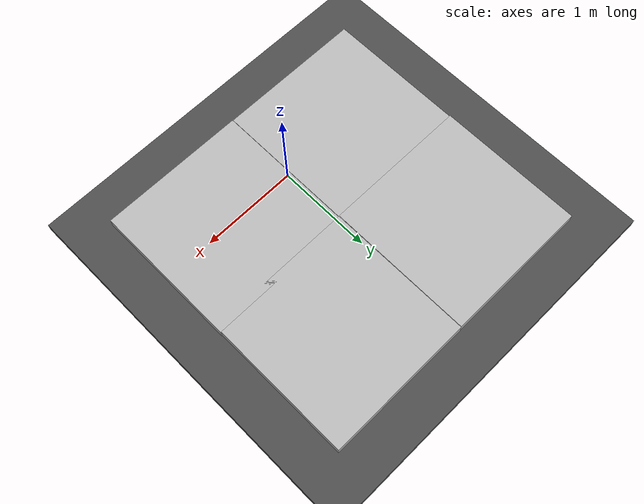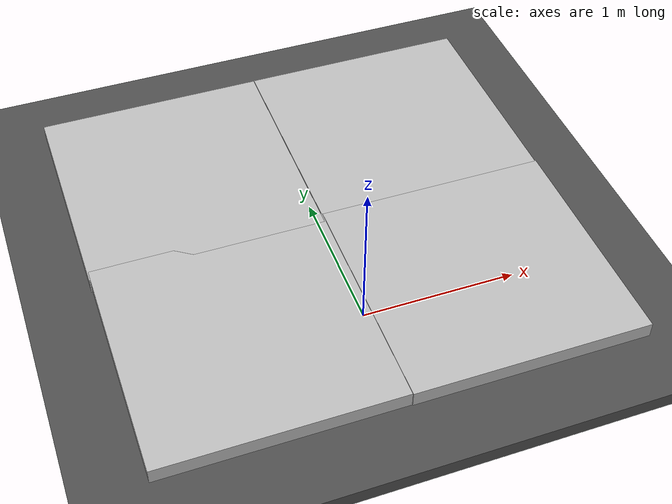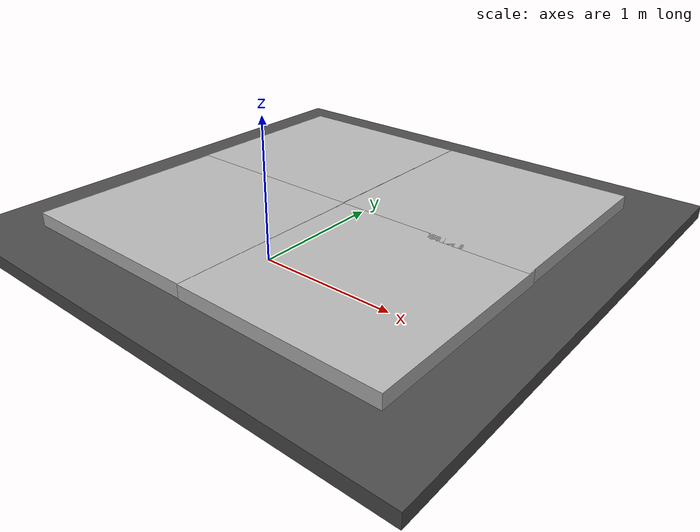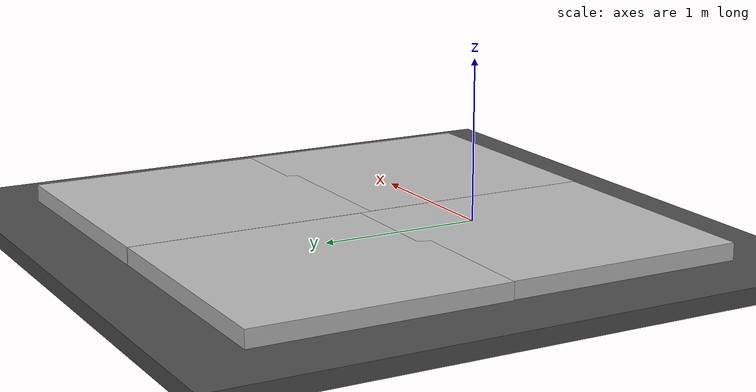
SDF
<sdf version="1.6">
 <world name="default">
  <light name="sun" type="directional">
   <pose>0 0 10 0 -0 0</pose>
   <diffuse>0.8 0.8 0.8 1</diffuse>
   <specular>0.2 0.2 0.2 1</specular>
   <attenuation>
    <range>1000</range>
    <constant>0.9</constant>
    <linear>0.01</linear>
    <quadratic>0.001</quadratic>
   </attenuation>
   <direction>-0.5 0.1 -0.9</direction>
  </light>
  <model name="ground_plane">
   <static>1</static>
   <link name="link">
    <collision name="collision">
     <geometry><plane><normal>0 0 1</normal><size>100 100</size></plane></geometry>
     <surface>
      <contact><collide_bitmask>65535</collide_bitmask></contact>
      <friction><ode><mu>100</mu><mu2>50</mu2></ode></friction>
     </surface>
    </collision>
    <visual name="visual">
     <cast_shadows>0</cast_shadows>
     <geometry><plane><normal>0 0 1</normal><size>100 100</size></plane></geometry>
     <material>
      <script><uri>file://media/materials/scripts/gazebo.material</uri><name>Gazebo/Grey</name></script>
     </material>
    </visual>
   </link>
  </model>
  <gravity>0 0 -9.8</gravity>
  <magnetic_field>6e-06 2.3e-05 -4.2e-05</magnetic_field>
  <atmosphere type="adiabatic"/>
  <physics name="default_physics" default="0" type="ode">
   <max_step_size>0.001</max_step_size>
   <real_time_factor>1</real_time_factor>
   <real_time_update_rate>1000</real_time_update_rate>
  </physics>
  <scene><ambient>0.4 0.4 0.4 1</ambient><background>0.7 0.7 0.7 1</background><shadows>1</shadows></scene>
  <audio><device>default</device></audio>
  <spherical_coordinates>
   <surface_model>EARTH_WGS84</surface_model>
   <latitude_deg>0</latitude_deg>
   <longitude_deg>0</longitude_deg>
   <elevation>0</elevation>
   <heading_deg>0</heading_deg>
  </spherical_coordinates>
  <model name="asphalt_plane">
   <static>1</static>
   <link name="link">
    <collision name="collision"><geometry><box><size>20 20 0.1</size></box></geometry></collision>
    <visual name="visual">
     <cast_shadows>0</cast_shadows>
     <geometry><box><size>20 20 0.1</size></box></geometry>
     <material>
      <script>
       <uri>model://asphalt_plane/materials/scripts</uri>
       <uri>model://asphalt_plane/materials/textures</uri>
       <name>vrc/asphalt</name>
      </script>
     </material>
    </visual>
   </link>
   <pose>0.205006 -0.730661 0 0 -0 0</pose>
  </model>
  <model name="walkway_metal_90">
   <static>1</static>
   <link name="link">
    <collision name="collision">
     <pose>0 0.762 0.076075 0 -0 0</pose>
     <geometry><box><size>1.524 1.524 0.15215</size></box></geometry>
    </collision>
    <visual name="visual">
     <geometry>
      <mesh><scale>0.001 0.001 0.001</scale><uri>model://walkway_metal_90/meshes/mesh.obj</uri></mesh>
     </geometry>
    </visual>
   </link>
   <pose>0.005669 0.011307 0 0 -0 1.57</pose>
  </model>
  <model name="walkway_metal_90_0">
   <static>1</static>
   <link name="link">
    <collision name="collision">
     <pose>0 0.762 0.076075 0 -0 0</pose>
     <geometry><box><size>1.524 1.524 0.15215</size></box></geometry>
    </collision>
    <visual name="visual">
     <geometry>
      <mesh><scale>0.001 0.001 0.001</scale><uri>model://walkway_metal_90/meshes/mesh.obj</uri></mesh>
     </geometry>
    </visual>
   </link>
   <pose>-0.764073 0.699952 0 0 -0 0</pose>
  </model>
  <model name="walkway_metal_90_1">
   <static>1</static>
   <link name="link">
    <collision name="collision">
     <pose>0 0.762 0.076075 0 -0 0</pose>
     <geometry><box><size>1.524 1.524 0.15215</size></box></geometry>
    </collision>
    <visual name="visual">
     <geometry>
      <mesh><scale>0.001 0.001 0.001</scale><uri>model://walkway_metal_90/meshes/mesh.obj</uri></mesh>
     </geometry>
    </visual>
   </link>
   <pose>0.771414 0.76779 0 0 -0 3.14</pose>
  </model>
  <model name="walkway_metal_90_2">
   <static>1</static>
   <link name="link">
    <collision name="collision">
     <pose>0 0.762 0.076075 0 -0 0</pose>
     <geometry><box><size>1.524 1.524 0.15215</size></box></geometry>
    </collision>
    <visual name="visual">
     <geometry>
      <mesh><scale>0.001 0.001 0.001</scale><uri>model://walkway_metal_90/meshes/mesh.obj</uri></mesh>
     </geometry>
    </visual>
   </link>
   <pose>0.001926 1.46386 0 0 0 -1.57</pose>
  </model>
 </world>
</sdf>
